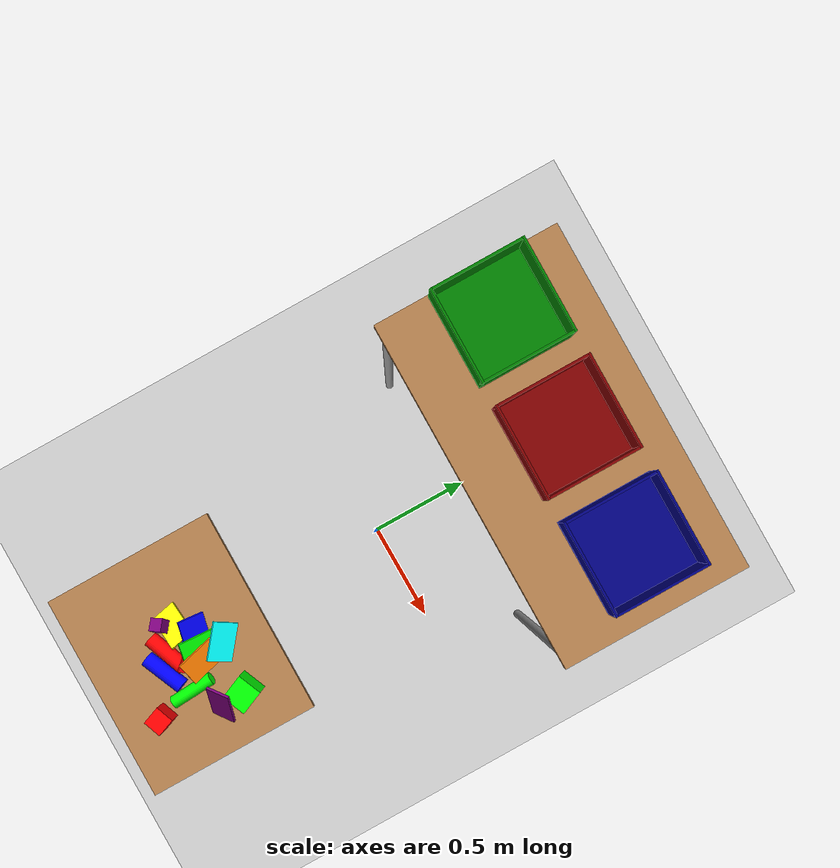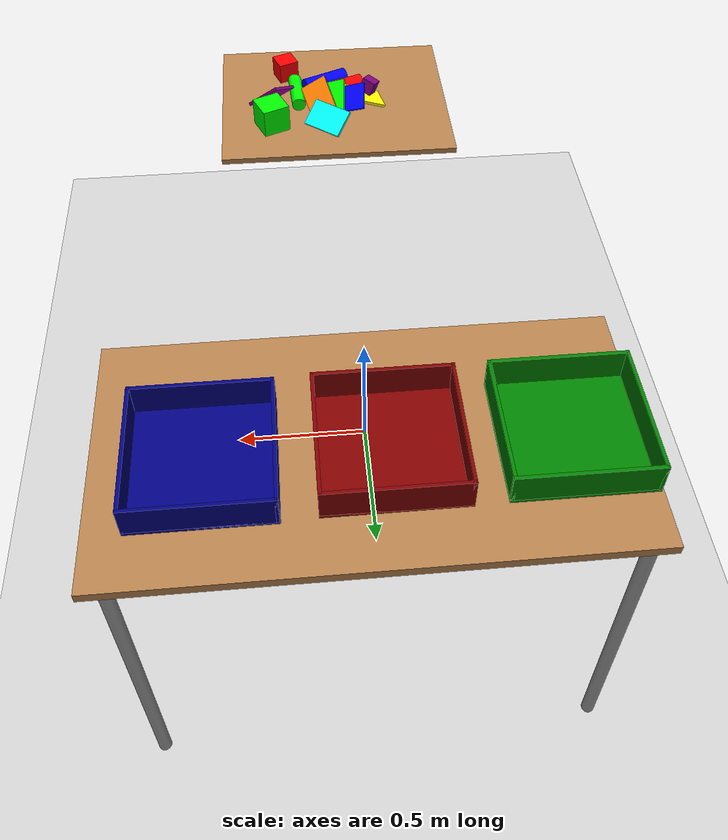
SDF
<sdf version="1.7">
 <world name="default">
  <light name="sun" type="directional">
   <pose>0 0 10 0 -0 0</pose>
   <diffuse>0.8 0.8 0.8 1</diffuse>
   <specular>0.2 0.2 0.2 1</specular>
   <attenuation>
    <range>1000</range>
    <constant>0.9</constant>
    <linear>0.01</linear>
    <quadratic>0.001</quadratic>
   </attenuation>
   <direction>-0.5 0.1 -0.9</direction>
   <spot><inner_angle>0</inner_angle><outer_angle>0</outer_angle><falloff>0</falloff></spot>
  </light>
  <model name="ground_plane">
   <static>1</static>
   <link name="link">
    <collision name="collision">
     <geometry><plane><normal>0 0 1</normal><size>100 100</size></plane></geometry>
     <surface><friction><ode><mu>100</mu><mu2>50</mu2></ode></friction></surface>
    </collision>
    <visual name="visual">
     <cast_shadows>0</cast_shadows>
     <geometry><plane><normal>0 0 1</normal><size>100 100</size></plane></geometry>
     <material>
      <script><uri>file://media/materials/scripts/gazebo.material</uri><name>Gazebo/Grey</name></script>
     </material>
    </visual>
   </link>
  </model>
  <gravity>0 0 -9.8</gravity>
  <magnetic_field>6e-06 2.3e-05 -4.2e-05</magnetic_field>
  <atmosphere type="adiabatic"/>
  <physics type="ode">
   <max_step_size>0.001</max_step_size>
   <real_time_factor>1</real_time_factor>
   <real_time_update_rate>1000</real_time_update_rate>
  </physics>
  <scene><ambient>0.4 0.4 0.4 1</ambient><background>0.7 0.7 0.7 1</background><shadows>1</shadows></scene>
  <audio><device>default</device></audio>
  <spherical_coordinates>
   <surface_model>EARTH_WGS84</surface_model>
   <latitude_deg>0</latitude_deg>
   <longitude_deg>0</longitude_deg>
   <elevation>0</elevation>
   <heading_deg>0</heading_deg>
  </spherical_coordinates>
  <model name="table">
   <static>1</static>
   <link name="link">
    <collision name="surface">
     <pose>0 0 1 0 -0 0</pose>
     <geometry><box><size>1.5 0.8 0.03</size></box></geometry>
     <surface>
      <friction><ode><mu>10</mu><mu2>5</mu2></ode></friction>
      <contact><ode><soft_cfm>0.0001</soft_cfm><soft_erp>0.4</soft_erp><kp>1e+06</kp><kd>10</kd></ode></contact>
     </surface>
    </collision>
    <visual name="visual1">
     <pose>0 0 1 0 -0 0</pose>
     <geometry><box><size>1.5 0.8 0.03</size></box></geometry>
     <material>
      <script><uri>file://media/materials/scripts/gazebo.material</uri><name>Gazebo/Wood</name></script>
     </material>
    </visual>
    <collision name="front_left_leg">
     <pose>0.68 0.38 0.5 0 -0 0</pose>
     <geometry><cylinder><radius>0.02</radius><length>1</length></cylinder></geometry>
    </collision>
    <visual name="front_left_leg">
     <pose>0.68 0.38 0.5 0 -0 0</pose>
     <geometry><cylinder><radius>0.02</radius><length>1</length></cylinder></geometry>
     <material>
      <script><uri>file://media/materials/scripts/gazebo.material</uri><name>Gazebo/Grey</name></script>
     </material>
    </visual>
    <collision name="front_right_leg">
     <pose>0.68 -0.38 0.5 0 -0 0</pose>
     <geometry><cylinder><radius>0.02</radius><length>1</length></cylinder></geometry>
    </collision>
    <visual name="front_right_leg">
     <pose>0.68 -0.38 0.5 0 -0 0</pose>
     <geometry><cylinder><radius>0.02</radius><length>1</length></cylinder></geometry>
     <material>
      <script><uri>file://media/materials/scripts/gazebo.material</uri><name>Gazebo/Grey</name></script>
     </material>
    </visual>
    <collision name="back_right_leg">
     <pose>-0.68 -0.38 0.5 0 -0 0</pose>
     <geometry><cylinder><radius>0.02</radius><length>1</length></cylinder></geometry>
    </collision>
    <visual name="back_right_leg">
     <pose>-0.68 -0.38 0.5 0 -0 0</pose>
     <geometry><cylinder><radius>0.02</radius><length>1</length></cylinder></geometry>
     <material>
      <script><uri>file://media/materials/scripts/gazebo.material</uri><name>Gazebo/Grey</name></script>
     </material>
    </visual>
    <collision name="back_left_leg">
     <pose>-0.68 0.38 0.5 0 -0 0</pose>
     <geometry><cylinder><radius>0.02</radius><length>1</length></cylinder></geometry>
    </collision>
    <visual name="back_left_leg">
     <pose>-0.68 0.38 0.5 0 -0 0</pose>
     <geometry><cylinder><radius>0.02</radius><length>1</length></cylinder></geometry>
     <material>
      <script><uri>file://media/materials/scripts/gazebo.material</uri><name>Gazebo/Grey</name></script>
     </material>
    </visual>
    <inertial>
     <inertia><ixx>1</ixx><ixy>0</ixy><ixz>0</ixz><iyy>1</iyy><iyz>0</iyz><izz>1</izz></inertia>
     <mass>50</mass>
    </inertial>
   </link>
   <pose>0.056083 0.801191 -1.2e-05 0 -0 2.5e-05</pose>
  </model>
  <plugin name="gazebo_link_attacher" filename="libgazebo_link_attacher.so"/>
  <plugin name="gazebo_ros_state" filename="libgazebo_ros_state.so">
   <namespace>/gazebo</namespace>
   <update_rate>100</update_rate>
  </plugin>
  <model name="cube_b">
   <link name="link_2">
    <inertial>
     <mass>2</mass>
     <inertia>
      <ixx>0.00083333</ixx>
      <ixy>0</ixy>
      <ixz>0</ixz>
      <iyy>0.00083333</iyy>
      <iyz>0</iyz>
      <izz>0.00083333</izz>
     </inertia>
    </inertial>
    <visual name="visual">
     <geometry><box><size>0.05 0.05 0.05</size></box></geometry>
     <material>
      <lighting>1</lighting>
      <script><uri>file://media/materials/scripts/gazebo.material</uri><name>Gazebo/Grey</name></script>
      <ambient>0 0 1 1</ambient>
      <diffuse>0 0 1 1</diffuse>
      <specular>0 0 0 1</specular>
      <emissive>0 0 0 1</emissive>
      <shader type="vertex"><normal_map>__default__</normal_map></shader>
     </material>
    </visual>
    <collision name="collision">
     <geometry><box><size>0.05 0.05 0.05</size></box></geometry>
     <surface>
      <friction>
       <ode><mu>0.8</mu><mu2>0.8</mu2><fdir1>0 0 0</fdir1><slip1>0</slip1><slip2>0</slip2></ode>
       <torsional>
        <coefficient>1</coefficient>
        <patch_radius>0</patch_radius>
        <surface_radius>0</surface_radius>
        <use_patch_radius>1</use_patch_radius>
        <ode><slip>0</slip></ode>
       </torsional>
      </friction>
      <bounce><restitution_coefficient>0</restitution_coefficient><threshold>1e+06</threshold></bounce>
      <contact>
       <collide_without_contact>0</collide_without_contact>
       <collide_without_contact_bitmask>1</collide_without_contact_bitmask>
       <collide_bitmask>1</collide_bitmask>
       <ode>
        <soft_cfm>0.0001</soft_cfm>
        <soft_erp>0.4</soft_erp>
        <kp>1e+06</kp>
        <kd>10</kd>
        <max_vel>0.01</max_vel>
        <min_depth>0</min_depth>
       </ode>
      </contact>
     </surface>
    </collision>
   </link>
   <static>0</static>
   <allow_auto_disable>0</allow_auto_disable>
   <pose>0.005816 -0.800378 1.01056 -0.002883 -0.003778 0.22375</pose>
  </model>
  <model name="cube_g">
   <link name="link_2">
    <inertial>
     <mass>2</mass>
     <inertia>
      <ixx>0.00333333</ixx>
      <iyy>0.00333333</iyy>
      <izz>0.00333333</izz>
      <ixy>0</ixy>
      <ixz>0</ixz>
      <iyz>0</iyz>
     </inertia>
    </inertial>
    <visual name="visual">
     <geometry><box><size>0.1 0.1 0.1</size></box></geometry>
     <material>
      <lighting>1</lighting>
      <script><uri>file://media/materials/scripts/gazebo.material</uri><name>Gazebo/Grey</name></script>
      <ambient>0 1 0 1</ambient>
      <diffuse>0 1 0 1</diffuse>
      <specular>0 0 0 1</specular>
      <emissive>0 0 0 1</emissive>
      <shader type="vertex"><normal_map>__default__</normal_map></shader>
     </material>
    </visual>
    <collision name="collision">
     <geometry><box><size>0.1 0.1 0.1</size></box></geometry>
     <surface>
      <friction>
       <ode><mu>0.8</mu><mu2>0.8</mu2><fdir1>0 0 0</fdir1><slip1>0</slip1><slip2>0</slip2></ode>
       <torsional>
        <coefficient>1</coefficient>
        <patch_radius>0</patch_radius>
        <surface_radius>0</surface_radius>
        <use_patch_radius>1</use_patch_radius>
        <ode><slip>0</slip></ode>
       </torsional>
      </friction>
      <bounce><restitution_coefficient>0</restitution_coefficient><threshold>1e+06</threshold></bounce>
      <contact>
       <collide_without_contact>0</collide_without_contact>
       <collide_without_contact_bitmask>1</collide_without_contact_bitmask>
       <collide_bitmask>1</collide_bitmask>
       <ode>
        <soft_cfm>0.0001</soft_cfm>
        <soft_erp>0.4</soft_erp>
        <kp>1e+06</kp>
        <kd>10</kd>
        <max_vel>0.01</max_vel>
        <min_depth>0</min_depth>
       </ode>
      </contact>
     </surface>
    </collision>
   </link>
   <static>0</static>
   <allow_auto_disable>0</allow_auto_disable>
   <pose>0.280411 -0.701677 1.03691 3.141 -0.004288 0.403256</pose>
  </model>
  <model name="cube_r">
   <link name="link_2">
    <inertial>
     <mass>2</mass>
     <inertia>
      <ixx>0.001875</ixx>
      <ixy>0</ixy>
      <ixz>0</ixz>
      <iyy>0.001875</iyy>
      <iyz>0</iyz>
      <izz>0.001875</izz>
     </inertia>
    </inertial>
    <visual name="visual">
     <geometry><box><size>0.075 0.075 0.075</size></box></geometry>
     <material>
      <lighting>1</lighting>
      <script><uri>file://media/materials/scripts/gazebo.material</uri><name>Gazebo/Grey</name></script>
      <ambient>1 0 0 1</ambient>
      <diffuse>1 0 0 1</diffuse>
      <specular>0 0 0 1</specular>
      <emissive>0 0 0 1</emissive>
      <shader type="vertex"><normal_map>__default__</normal_map></shader>
     </material>
    </visual>
    <collision name="collision">
     <geometry><box><size>0.075 0.075 0.075</size></box></geometry>
     <surface>
      <friction>
       <ode><mu>0.8</mu><mu2>0.8</mu2><fdir1>0 0 0</fdir1><slip1>0</slip1><slip2>0</slip2></ode>
       <torsional>
        <coefficient>1</coefficient>
        <patch_radius>0</patch_radius>
        <surface_radius>0</surface_radius>
        <use_patch_radius>1</use_patch_radius>
        <ode><slip>0</slip></ode>
       </torsional>
      </friction>
      <bounce><restitution_coefficient>0</restitution_coefficient><threshold>1e+06</threshold></bounce>
      <contact>
       <collide_without_contact>0</collide_without_contact>
       <collide_without_contact_bitmask>1</collide_without_contact_bitmask>
       <collide_bitmask>1</collide_bitmask>
       <ode>
        <soft_cfm>0.0001</soft_cfm>
        <soft_erp>0.4</soft_erp>
        <kp>1e+06</kp>
        <kd>10</kd>
        <max_vel>0.01</max_vel>
        <min_depth>0</min_depth>
       </ode>
      </contact>
     </surface>
    </collision>
   </link>
   <static>0</static>
   <allow_auto_disable>0</allow_auto_disable>
   <pose>0.218367 -1.0305 1.02378 -1.46897 -1.56649 -2.87707</pose>
  </model>
  <model name="cylinder_r">
   <link name="link_0">
    <inertial>
     <mass>0.2</mass>
     <inertia>
      <ixx>0.0005267</ixx>
      <ixy>0</ixy>
      <ixz>0</ixz>
      <iyy>0.0005267</iyy>
      <iyz>0</iyz>
      <izz>9e-05</izz>
     </inertia>
    </inertial>
    <visual name="visual">
     <geometry><cylinder><radius>0.03</radius><length>0.17</length></cylinder></geometry>
     <material>
      <lighting>1</lighting>
      <script><uri>file://media/materials/scripts/gazebo.material</uri><name>Gazebo/Grey</name></script>
      <ambient>1 0 0 1</ambient>
      <diffuse>1 0 0 1</diffuse>
      <specular>0 0 0 1</specular>
      <emissive>0 0 0 1</emissive>
      <shader type="vertex"><normal_map>__default__</normal_map></shader>
     </material>
    </visual>
    <collision name="collision">
     <geometry><cylinder><radius>0.03</radius><length>0.17</length></cylinder></geometry>
     <surface>
      <friction>
       <ode><mu>0.5</mu><mu2>0.5</mu2><fdir1>0 0 0</fdir1><slip1>0</slip1><slip2>0</slip2></ode>
       <torsional>
        <coefficient>1</coefficient>
        <patch_radius>0</patch_radius>
        <surface_radius>0</surface_radius>
        <use_patch_radius>1</use_patch_radius>
        <ode><slip>0</slip></ode>
       </torsional>
      </friction>
      <bounce><restitution_coefficient>0</restitution_coefficient><threshold>1e+06</threshold></bounce>
      <contact>
       <collide_without_contact>0</collide_without_contact>
       <collide_without_contact_bitmask>1</collide_without_contact_bitmask>
       <collide_bitmask>1</collide_bitmask>
       <ode>
        <soft_cfm>0.0001</soft_cfm>
        <soft_erp>0.4</soft_erp>
        <kp>1e+06</kp>
        <kd>10</kd>
        <max_vel>0.01</max_vel>
        <min_depth>0</min_depth>
       </ode>
      </contact>
     </surface>
    </collision>
   </link>
   <static>0</static>
   <allow_auto_disable>0</allow_auto_disable>
   <pose>0.01283 -0.890317 1.01559 -1.57859 0.991795 1.92896</pose>
  </model>
  <model name="cylinder_b">
   <link name="link_0">
    <inertial>
     <mass>0.2</mass>
     <inertia>
      <ixx>0.0005267</ixx>
      <ixy>0</ixy>
      <ixz>0</ixz>
      <iyy>0.0005267</iyy>
      <iyz>0</iyz>
      <izz>9e-05</izz>
     </inertia>
    </inertial>
    <visual name="visual">
     <geometry><cylinder><radius>0.03</radius><length>0.17</length></cylinder></geometry>
     <material>
      <lighting>1</lighting>
      <ambient>0 0 1 1</ambient>
      <diffuse>0 0 1 1</diffuse>
      <specular>0.1 0.1 0.1 1</specular>
      <emissive>0 0 0 1</emissive>
      <shader type="vertex"><normal_map>__default__</normal_map></shader>
     </material>
    </visual>
    <collision name="collision">
     <geometry><cylinder><radius>0.03</radius><length>0.17</length></cylinder></geometry>
     <surface>
      <friction>
       <ode><mu>0.4</mu><mu2>0.4</mu2><fdir1>0 0 0</fdir1><slip1>0</slip1><slip2>0</slip2></ode>
       <torsional>
        <coefficient>1</coefficient>
        <patch_radius>0</patch_radius>
        <surface_radius>0</surface_radius>
        <use_patch_radius>1</use_patch_radius>
        <ode><slip>0</slip></ode>
       </torsional>
      </friction>
      <bounce><restitution_coefficient>0</restitution_coefficient><threshold>1e+06</threshold></bounce>
      <contact>
       <collide_without_contact>0</collide_without_contact>
       <collide_without_contact_bitmask>1</collide_without_contact_bitmask>
       <collide_bitmask>1</collide_bitmask>
       <ode>
        <soft_cfm>0.0001</soft_cfm>
        <soft_erp>0.4</soft_erp>
        <kp>1e+06</kp>
        <kd>10</kd>
        <max_vel>0.01</max_vel>
        <min_depth>0</min_depth>
       </ode>
      </contact>
     </surface>
    </collision>
   </link>
   <static>0</static>
   <allow_auto_disable>0</allow_auto_disable>
   <pose>0.070182 -0.934871 1.01578 1.53201 1.46071 1.93997</pose>
  </model>
  <model name="cylinder_g">
   <link name="link_0">
    <inertial>
     <mass>0.2</mass>
     <inertia>
      <ixx>0.0005129</ixx>
      <ixy>0</ixy>
      <ixz>0</ixz>
      <iyy>0.0005129</iyy>
      <iyz>0</iyz>
      <izz>6.25e-05</izz>
     </inertia>
    </inertial>
    <visual name="visual">
     <geometry><cylinder><radius>0.025</radius><length>0.17</length></cylinder></geometry>
     <material>
      <lighting>1</lighting>
      <ambient>0 1 0 1</ambient>
      <diffuse>0 1 0 1</diffuse>
      <specular>0.1 0.1 0.1 1</specular>
      <emissive>0 0 0 1</emissive>
      <shader type="vertex"><normal_map>__default__</normal_map></shader>
     </material>
    </visual>
    <collision name="collision">
     <geometry><cylinder><radius>0.025</radius><length>0.17</length></cylinder></geometry>
     <surface>
      <friction>
       <ode><mu>0.5</mu><mu2>0.5</mu2><fdir1>0 0 0</fdir1><slip1>0</slip1><slip2>0</slip2></ode>
       <torsional>
        <coefficient>1</coefficient>
        <patch_radius>0</patch_radius>
        <surface_radius>0</surface_radius>
        <use_patch_radius>1</use_patch_radius>
        <ode><slip>0</slip></ode>
       </torsional>
      </friction>
      <bounce><restitution_coefficient>0</restitution_coefficient><threshold>1e+06</threshold></bounce>
      <contact>
       <collide_without_contact>0</collide_without_contact>
       <collide_without_contact_bitmask>1</collide_without_contact_bitmask>
       <collide_bitmask>1</collide_bitmask>
       <ode>
        <soft_cfm>0.0001</soft_cfm>
        <soft_erp>0.4</soft_erp>
        <kp>1e+06</kp>
        <kd>10</kd>
        <max_vel>0.01</max_vel>
        <min_depth>0</min_depth>
       </ode>
      </contact>
     </surface>
    </collision>
   </link>
   <static>0</static>
   <allow_auto_disable>0</allow_auto_disable>
   <pose>0.181981 -0.877197 1.01131 -1.56991 -0.138812 0.059658</pose>
  </model>
  <model name="cuboid_r">
   <link name="link">
    <inertial>
     <mass>2</mass>
     <inertia>
      <ixx>0.001683</ixx>
      <iyy>0.003767</iyy>
      <izz>0.005417</izz>
      <ixy>0</ixy>
      <ixz>0</ixz>
      <iyz>0</iyz>
     </inertia>
    </inertial>
    <visual name="visual">
     <geometry><box><size>0.15 0.1 0.01</size></box></geometry>
     <material><ambient>1 0 0 1</ambient><diffuse>1 0 0 1</diffuse><specular>0.1 0.1 0.1 1</specular></material>
    </visual>
    <collision name="collision">
     <geometry><box><size>0.15 0.1 0.01</size></box></geometry>
     <surface>
      <friction>
       <ode><mu>0.6</mu><mu2>0.6</mu2><fdir1>0 0 0</fdir1><slip1>0</slip1><slip2>0</slip2></ode>
       <torsional>
        <coefficient>1</coefficient>
        <patch_radius>0</patch_radius>
        <surface_radius>0</surface_radius>
        <use_patch_radius>1</use_patch_radius>
        <ode><slip>0</slip></ode>
       </torsional>
      </friction>
      <bounce><restitution_coefficient>0</restitution_coefficient><threshold>1e+06</threshold></bounce>
      <contact>
       <collide_without_contact>0</collide_without_contact>
       <collide_without_contact_bitmask>1</collide_without_contact_bitmask>
       <collide_bitmask>1</collide_bitmask>
       <ode>
        <soft_cfm>0.0001</soft_cfm>
        <soft_erp>0.4</soft_erp>
        <kp>1e+06</kp>
        <kd>10</kd>
        <max_vel>0.01</max_vel>
        <min_depth>0</min_depth>
       </ode>
      </contact>
     </surface>
    </collision>
   </link>
   <static>0</static>
   <allow_auto_disable>0</allow_auto_disable>
   <pose>0.070081 -0.793227 1.02904 -0.65064 -0.0441 -0.832726</pose>
  </model>
  <model name="cuboid_g">
   <link name="link">
    <inertial>
     <mass>2</mass>
     <inertia>
      <ixx>0.001683</ixx>
      <iyy>0.003767</iyy>
      <izz>0.005417</izz>
      <ixy>0</ixy>
      <ixz>0</ixz>
      <iyz>0</iyz>
     </inertia>
    </inertial>
    <visual name="visual">
     <geometry><box><size>0.15 0.1 0.01</size></box></geometry>
     <material><ambient>0 1 0 1</ambient><diffuse>0 1 0 1</diffuse><specular>0.1 0.1 0.1 1</specular></material>
    </visual>
    <collision name="collision">
     <geometry><box><size>0.15 0.1 0.01</size></box></geometry>
     <surface>
      <friction>
       <ode><mu>0.6</mu><mu2>0.6</mu2><fdir1>0 0 0</fdir1><slip1>0</slip1><slip2>0</slip2></ode>
       <torsional>
        <coefficient>1</coefficient>
        <patch_radius>0</patch_radius>
        <surface_radius>0</surface_radius>
        <use_patch_radius>1</use_patch_radius>
        <ode><slip>0</slip></ode>
       </torsional>
      </friction>
      <bounce><restitution_coefficient>0</restitution_coefficient><threshold>1e+06</threshold></bounce>
      <contact>
       <collide_without_contact>0</collide_without_contact>
       <collide_without_contact_bitmask>1</collide_without_contact_bitmask>
       <collide_bitmask>1</collide_bitmask>
       <ode>
        <soft_cfm>0.0001</soft_cfm>
        <soft_erp>0.4</soft_erp>
        <kp>1e+06</kp>
        <kd>10</kd>
        <max_vel>0.01</max_vel>
        <min_depth>0</min_depth>
       </ode>
      </contact>
     </surface>
    </collision>
   </link>
   <static>0</static>
   <allow_auto_disable>0</allow_auto_disable>
   <pose>0.053615 -0.759919 1.04459 -0.395031 -0.530456 -1.6538</pose>
  </model>
  <model name="cuboid_b">
   <link name="link">
    <inertial>
     <mass>2</mass>
     <inertia>
      <ixx>0.001683</ixx>
      <iyy>0.003767</iyy>
      <izz>0.005417</izz>
      <ixy>0</ixy>
      <ixz>0</ixz>
      <iyz>0</iyz>
     </inertia>
    </inertial>
    <visual name="visual">
     <geometry><box><size>0.15 0.1 0.01</size></box></geometry>
     <material><ambient>0 0 1 1</ambient><diffuse>0 0 1 1</diffuse><specular>0.1 0.1 0.1 1</specular></material>
    </visual>
    <collision name="collision">
     <geometry><box><size>0.15 0.1 0.01</size></box></geometry>
     <surface>
      <friction>
       <ode><mu>0.6</mu><mu2>0.6</mu2><fdir1>0 0 0</fdir1><slip1>0</slip1><slip2>0</slip2></ode>
       <torsional>
        <coefficient>1</coefficient>
        <patch_radius>0</patch_radius>
        <surface_radius>0</surface_radius>
        <use_patch_radius>1</use_patch_radius>
        <ode><slip>0</slip></ode>
       </torsional>
      </friction>
      <bounce><restitution_coefficient>0</restitution_coefficient><threshold>1e+06</threshold></bounce>
      <contact>
       <collide_without_contact>0</collide_without_contact>
       <collide_without_contact_bitmask>1</collide_without_contact_bitmask>
       <collide_bitmask>1</collide_bitmask>
       <ode>
        <soft_cfm>0.0001</soft_cfm>
        <soft_erp>0.4</soft_erp>
        <kp>1e+06</kp>
        <kd>10</kd>
        <max_vel>0.01</max_vel>
        <min_depth>0</min_depth>
       </ode>
      </contact>
     </surface>
    </collision>
   </link>
   <static>0</static>
   <allow_auto_disable>0</allow_auto_disable>
   <pose>0.003038 -0.751609 1.05441 -0.571712 0.328393 -0.306301</pose>
  </model>
  <model name="cuboid_purple">
   <link name="link">
    <inertial>
     <mass>2</mass>
     <inertia>
      <ixx>0.001683</ixx>
      <iyy>0.003767</iyy>
      <izz>0.005417</izz>
      <ixy>0</ixy>
      <ixz>0</ixz>
      <iyz>0</iyz>
     </inertia>
    </inertial>
    <visual name="visual">
     <geometry><box><size>0.15 0.1 0.01</size></box></geometry>
     <material>
      <ambient>0.5 0 0.5 1</ambient>
      <diffuse>0.5 0 0.5 1</diffuse>
      <specular>0.1 0.1 0.1 1</specular>
     </material>
    </visual>
    <collision name="collision">
     <geometry><box><size>0.15 0.1 0.01</size></box></geometry>
     <surface>
      <friction>
       <ode><mu>0.6</mu><mu2>0.6</mu2><fdir1>0 0 0</fdir1><slip1>0</slip1><slip2>0</slip2></ode>
       <torsional>
        <coefficient>1</coefficient>
        <patch_radius>0</patch_radius>
        <surface_radius>0</surface_radius>
        <use_patch_radius>1</use_patch_radius>
        <ode><slip>0</slip></ode>
       </torsional>
      </friction>
      <bounce><restitution_coefficient>0</restitution_coefficient><threshold>1e+06</threshold></bounce>
      <contact>
       <collide_without_contact>0</collide_without_contact>
       <collide_without_contact_bitmask>1</collide_without_contact_bitmask>
       <collide_bitmask>1</collide_bitmask>
       <ode>
        <soft_cfm>0.0001</soft_cfm>
        <soft_erp>0.4</soft_erp>
        <kp>1e+06</kp>
        <kd>10</kd>
        <max_vel>0.01</max_vel>
        <min_depth>0</min_depth>
       </ode>
      </contact>
     </surface>
    </collision>
   </link>
   <static>0</static>
   <allow_auto_disable>0</allow_auto_disable>
   <pose>0.277521 -0.795941 1.05594 -2.65458 0.688781 -0.477079</pose>
  </model>
  <model name="cuboid_orange">
   <link name="link">
    <inertial>
     <mass>2</mass>
     <inertia>
      <ixx>0.001683</ixx>
      <iyy>0.003767</iyy>
      <izz>0.005417</izz>
      <ixy>0</ixy>
      <ixz>0</ixz>
      <iyz>0</iyz>
     </inertia>
    </inertial>
    <visual name="visual">
     <geometry><box><size>0.15 0.1 0.01</size></box></geometry>
     <material>
      <ambient>1 0.5 0 1</ambient>
      <diffuse>1 0.5 0 1</diffuse>
      <specular>0.1 0.1 0.1 1</specular>
     </material>
    </visual>
    <collision name="collision">
     <geometry><box><size>0.15 0.1 0.01</size></box></geometry>
     <surface>
      <friction>
       <ode><mu>0.6</mu><mu2>0.6</mu2><fdir1>0 0 0</fdir1><slip1>0</slip1><slip2>0</slip2></ode>
       <torsional>
        <coefficient>1</coefficient>
        <patch_radius>0</patch_radius>
        <surface_radius>0</surface_radius>
        <use_patch_radius>1</use_patch_radius>
        <ode><slip>0</slip></ode>
       </torsional>
      </friction>
      <bounce><restitution_coefficient>0</restitution_coefficient><threshold>1e+06</threshold></bounce>
      <contact>
       <collide_without_contact>0</collide_without_contact>
       <collide_without_contact_bitmask>1</collide_without_contact_bitmask>
       <collide_bitmask>1</collide_bitmask>
       <ode>
        <soft_cfm>0.0001</soft_cfm>
        <soft_erp>0.4</soft_erp>
        <kp>1e+06</kp>
        <kd>10</kd>
        <max_vel>0.01</max_vel>
        <min_depth>0</min_depth>
       </ode>
      </contact>
     </surface>
    </collision>
   </link>
   <static>0</static>
   <allow_auto_disable>0</allow_auto_disable>
   <pose>0.100115 -0.778823 1.04272 -0.548084 -0.36892 -1.30547</pose>
  </model>
  <model name="cuboid_yellow">
   <link name="link">
    <inertial>
     <mass>2</mass>
     <inertia>
      <ixx>0.001683</ixx>
      <iyy>0.003767</iyy>
      <izz>0.005417</izz>
      <ixy>0</ixy>
      <ixz>0</ixz>
      <iyz>0</iyz>
     </inertia>
    </inertial>
    <visual name="visual">
     <geometry><box><size>0.15 0.1 0.01</size></box></geometry>
     <material><ambient>1 1 0 1</ambient><diffuse>1 1 0 1</diffuse><specular>0.1 0.1 0.1 1</specular></material>
    </visual>
    <collision name="collision">
     <geometry><box><size>0.15 0.1 0.01</size></box></geometry>
     <surface>
      <friction>
       <ode><mu>0.6</mu><mu2>0.6</mu2><fdir1>0 0 0</fdir1><slip1>0</slip1><slip2>0</slip2></ode>
       <torsional>
        <coefficient>1</coefficient>
        <patch_radius>0</patch_radius>
        <surface_radius>0</surface_radius>
        <use_patch_radius>1</use_patch_radius>
        <ode><slip>0</slip></ode>
       </torsional>
      </friction>
      <bounce><restitution_coefficient>0</restitution_coefficient><threshold>1e+06</threshold></bounce>
      <contact>
       <collide_without_contact>0</collide_without_contact>
       <collide_without_contact_bitmask>1</collide_without_contact_bitmask>
       <collide_bitmask>1</collide_bitmask>
       <ode>
        <soft_cfm>0.0001</soft_cfm>
        <soft_erp>0.4</soft_erp>
        <kp>1e+06</kp>
        <kd>10</kd>
        <max_vel>0.01</max_vel>
        <min_depth>0</min_depth>
       </ode>
      </contact>
     </surface>
    </collision>
   </link>
   <static>0</static>
   <allow_auto_disable>0</allow_auto_disable>
   <pose>-0.069932 -0.821076 1.01854 0.001142 -0.395888 0.207011</pose>
  </model>
  <model name="cuboid_cyan">
   <link name="link">
    <inertial>
     <mass>2</mass>
     <inertia>
      <ixx>0.001683</ixx>
      <iyy>0.003767</iyy>
      <izz>0.005417</izz>
      <ixy>0</ixy>
      <ixz>0</ixz>
      <iyz>0</iyz>
     </inertia>
    </inertial>
    <visual name="visual">
     <geometry><box><size>0.15 0.1 0.01</size></box></geometry>
     <material><ambient>0 1 1 1</ambient><diffuse>0 1 1 1</diffuse><specular>0.1 0.1 0.1 1</specular></material>
    </visual>
    <collision name="collision">
     <geometry><box><size>0.15 0.1 0.01</size></box></geometry>
     <surface>
      <friction>
       <ode><mu>0.6</mu><mu2>0.6</mu2><fdir1>0 0 0</fdir1><slip1>0</slip1><slip2>0</slip2></ode>
       <torsional>
        <coefficient>1</coefficient>
        <patch_radius>0</patch_radius>
        <surface_radius>0</surface_radius>
        <use_patch_radius>1</use_patch_radius>
        <ode><slip>0</slip></ode>
       </torsional>
      </friction>
      <bounce><restitution_coefficient>0</restitution_coefficient><threshold>1e+06</threshold></bounce>
      <contact>
       <collide_without_contact>0</collide_without_contact>
       <collide_without_contact_bitmask>1</collide_without_contact_bitmask>
       <collide_bitmask>1</collide_bitmask>
       <ode>
        <soft_cfm>0.0001</soft_cfm>
        <soft_erp>0.4</soft_erp>
        <kp>1e+06</kp>
        <kd>10</kd>
        <max_vel>0.01</max_vel>
        <min_depth>0</min_depth>
       </ode>
      </contact>
     </surface>
    </collision>
   </link>
   <static>0</static>
   <allow_auto_disable>0</allow_auto_disable>
   <pose>0.075635 -0.686444 1.01974 -0.631256 -0.002537 -0.674118</pose>
  </model>
  <model name="workspace">
   <link name="link">
    <inertial>
     <mass>100</mass>
     <inertia><ixx>6.02417</ixx><ixy>0</ixy><ixz>0</ixz><iyy>4.08667</iyy><iyz>0</iyz><izz>10.1042</izz></inertia>
    </inertial>
    <visual name="visual">
     <geometry><box><size>0.7 0.85 0.02</size></box></geometry>
     <material>
      <script><name>Gazebo/Wood</name><uri>file://media/materials/scripts/gazebo.material</uri></script>
      <shader type="pixel"/>
     </material>
    </visual>
    <collision name="collision">
     <geometry><box><size>0.7 0.85 0.02</size></box></geometry>
     <surface>
      <friction>
       <ode><mu>100</mu><mu2>50</mu2><fdir1>0 0 0</fdir1><slip1>0</slip1><slip2>0</slip2></ode>
       <torsional>
        <coefficient>1</coefficient>
        <patch_radius>0</patch_radius>
        <surface_radius>0</surface_radius>
        <use_patch_radius>1</use_patch_radius>
        <ode><slip>0</slip></ode>
       </torsional>
      </friction>
      <bounce><restitution_coefficient>0</restitution_coefficient><threshold>1e+06</threshold></bounce>
      <contact>
       <collide_without_contact>0</collide_without_contact>
       <collide_without_contact_bitmask>1</collide_without_contact_bitmask>
       <collide_bitmask>1</collide_bitmask>
       <ode>
        <soft_cfm>0.0001</soft_cfm>
        <soft_erp>0.2</soft_erp>
        <kp>1e+13</kp>
        <kd>10</kd>
        <max_vel>0.01</max_vel>
        <min_depth>0</min_depth>
       </ode>
       <bullet>
        <split_impulse>1</split_impulse>
        <split_impulse_penetration_threshold>-0.01</split_impulse_penetration_threshold>
        <soft_cfm>0</soft_cfm>
        <soft_erp>0.2</soft_erp>
        <kp>1e+13</kp>
        <kd>1</kd>
       </bullet>
      </contact>
     </surface>
    </collision>
   </link>
   <static>1</static>
   <pose>0.0416 -0.859914 0.975746 -0.004154 -0.001127 1.57039</pose>
  </model>
  <model name="tray_red">
   <static>1</static>
   <link name="link">
    <collision name="base_collision">
     <pose>0 0 0.01 0 -0 0</pose>
     <geometry><box><size>0.4 0.4 0.01</size></box></geometry>
     <surface><contact><ode><mu>50</mu><mu2>50</mu2></ode></contact></surface>
    </collision>
    <visual name="base_visual">
     <pose>0 0 0.01 0 -0 0</pose>
     <geometry><box><size>0.4 0.4 0.01</size></box></geometry>
     <material>
      <ambient>1 0 0 1</ambient>
      <diffuse>0.5 0 0 1</diffuse>
      <specular>0 0 0 1</specular>
      <emissive>0 0 0 1</emissive>
      <shininess>100</shininess>
     </material>
    </visual>
    <collision name="front_collision">
     <pose>0 0.195 0.06 0 -0 0</pose>
     <geometry><box><size>0.4 0.01 0.1</size></box></geometry>
    </collision>
    <visual name="front_visual">
     <pose>0 0.195 0.06 0 -0 0</pose>
     <geometry><box><size>0.4 0.01 0.1</size></box></geometry>
     <material>
      <ambient>1 0 0 1</ambient>
      <diffuse>0.5 0 0 1</diffuse>
      <specular>0 0 0 1</specular>
      <emissive>0 0 0 1</emissive>
     </material>
    </visual>
    <collision name="back_collision">
     <pose>0 -0.195 0.06 0 -0 0</pose>
     <geometry><box><size>0.4 0.01 0.1</size></box></geometry>
    </collision>
    <visual name="back_visual">
     <pose>0 -0.195 0.06 0 -0 0</pose>
     <geometry><box><size>0.4 0.01 0.1</size></box></geometry>
     <material>
      <ambient>1 0 0 1</ambient>
      <diffuse>0.5 0 0 1</diffuse>
      <specular>0 0 0 1</specular>
      <emissive>0 0 0 1</emissive>
     </material>
    </visual>
    <collision name="left_collision">
     <pose>0.195 0 0.06 0 -0 0</pose>
     <geometry><box><size>0.01 0.4 0.1</size></box></geometry>
    </collision>
    <visual name="left_visual">
     <pose>0.195 0 0.06 0 -0 0</pose>
     <geometry><box><size>0.01 0.4 0.1</size></box></geometry>
     <material>
      <ambient>1 0 0 1</ambient>
      <diffuse>0.5 0 0 1</diffuse>
      <specular>0 0 0 1</specular>
      <emissive>0 0 0 1</emissive>
     </material>
    </visual>
    <collision name="right_collision">
     <pose>-0.195 0 0.06 0 -0 0</pose>
     <geometry><box><size>0.01 0.4 0.1</size></box></geometry>
    </collision>
    <visual name="right_visual">
     <pose>-0.195 0 0.06 0 -0 0</pose>
     <geometry><box><size>0.01 0.4 0.1</size></box></geometry>
     <material>
      <ambient>1 0 0 1</ambient>
      <diffuse>0.5 0 0 1</diffuse>
      <specular>0 0 0 1</specular>
      <emissive>0 0 0 1</emissive>
     </material>
    </visual>
    <inertial>
     <inertia><ixx>1</ixx><ixy>0</ixy><ixz>0</ixz><iyy>1</iyy><iyz>0</iyz><izz>1</izz></inertia>
     <mass>1</mass>
    </inertial>
   </link>
   <pose>0.003367 0.836815 1.00999 0 -0 0</pose>
  </model>
  <model name="tray_green">
   <static>1</static>
   <link name="link">
    <collision name="base_collision">
     <pose>0 0 0.01 0 -0 0</pose>
     <geometry><box><size>0.4 0.4 0.01</size></box></geometry>
     <surface><contact><ode><mu>50</mu><mu2>50</mu2></ode></contact></surface>
    </collision>
    <visual name="base_visual">
     <pose>0 0 0.01 0 -0 0</pose>
     <geometry><box><size>0.4 0.4 0.01</size></box></geometry>
     <material><ambient>0 1 0 1</ambient><diffuse>0 0.5 0 1</diffuse></material>
    </visual>
    <collision name="front_collision">
     <pose>0 0.195 0.06 0 -0 0</pose>
     <geometry><box><size>0.4 0.01 0.1</size></box></geometry>
    </collision>
    <visual name="front_visual">
     <pose>0 0.195 0.06 0 -0 0</pose>
     <geometry><box><size>0.4 0.01 0.1</size></box></geometry>
     <material><ambient>0 1 0 1</ambient><diffuse>0 0.5 0 1</diffuse></material>
    </visual>
    <collision name="back_collision">
     <pose>0 -0.195 0.06 0 -0 0</pose>
     <geometry><box><size>0.4 0.01 0.1</size></box></geometry>
    </collision>
    <visual name="back_visual">
     <pose>0 -0.195 0.06 0 -0 0</pose>
     <geometry><box><size>0.4 0.01 0.1</size></box></geometry>
     <material><ambient>0 1 0 1</ambient><diffuse>0 0.5 0 1</diffuse></material>
    </visual>
    <collision name="left_collision">
     <pose>0.195 0 0.06 0 -0 0</pose>
     <geometry><box><size>0.01 0.4 0.1</size></box></geometry>
    </collision>
    <visual name="left_visual">
     <pose>0.195 0 0.06 0 -0 0</pose>
     <geometry><box><size>0.01 0.4 0.1</size></box></geometry>
     <material><ambient>0 1 0 1</ambient><diffuse>0 0.5 0 1</diffuse></material>
    </visual>
    <collision name="right_collision">
     <pose>-0.195 0 0.06 0 -0 0</pose>
     <geometry><box><size>0.01 0.4 0.1</size></box></geometry>
    </collision>
    <visual name="right_visual">
     <pose>-0.195 0 0.06 0 -0 0</pose>
     <geometry><box><size>0.01 0.4 0.1</size></box></geometry>
     <material><ambient>0 1 0 1</ambient><diffuse>0 0.5 0 1</diffuse></material>
    </visual>
    <inertial>
     <inertia><ixx>1</ixx><ixy>0</ixy><ixz>0</ixz><iyy>1</iyy><iyz>0</iyz><izz>1</izz></inertia>
     <mass>1</mass>
    </inertial>
   </link>
   <pose>-0.487214 0.834657 1.00999 0 -0 0</pose>
  </model>
  <model name="tray_blue">
   <static>1</static>
   <link name="link">
    <collision name="base_collision">
     <pose>0 0 0.01 0 -0 0</pose>
     <geometry><box><size>0.4 0.4 0.01</size></box></geometry>
     <surface><contact><ode><mu>50</mu><mu2>50</mu2></ode></contact></surface>
    </collision>
    <visual name="base_visual">
     <pose>0 0 0.01 0 -0 0</pose>
     <geometry><box><size>0.4 0.4 0.01</size></box></geometry>
     <material><ambient>0 0 1 1</ambient><diffuse>0 0 0.5 1</diffuse></material>
    </visual>
    <collision name="front_collision">
     <pose>0 0.195 0.06 0 -0 0</pose>
     <geometry><box><size>0.4 0.01 0.1</size></box></geometry>
    </collision>
    <visual name="front_visual">
     <pose>0 0.195 0.06 0 -0 0</pose>
     <geometry><box><size>0.4 0.01 0.1</size></box></geometry>
     <material><ambient>0 0 1 1</ambient><diffuse>0 0 0.5 1</diffuse></material>
    </visual>
    <collision name="back_collision">
     <pose>0 -0.195 0.06 0 -0 0</pose>
     <geometry><box><size>0.4 0.01 0.1</size></box></geometry>
    </collision>
    <visual name="back_visual">
     <pose>0 -0.195 0.06 0 -0 0</pose>
     <geometry><box><size>0.4 0.01 0.1</size></box></geometry>
     <material><ambient>0 0 1 1</ambient><diffuse>0 0 0.5 1</diffuse></material>
    </visual>
    <collision name="left_collision">
     <pose>0.195 0 0.06 0 -0 0</pose>
     <geometry><box><size>0.01 0.4 0.1</size></box></geometry>
    </collision>
    <visual name="left_visual">
     <pose>0.195 0 0.06 0 -0 0</pose>
     <geometry><box><size>0.01 0.4 0.1</size></box></geometry>
     <material><ambient>0 0 1 1</ambient><diffuse>0 0 0.5 1</diffuse></material>
    </visual>
    <collision name="right_collision">
     <pose>-0.195 0 0.06 0 -0 0</pose>
     <geometry><box><size>0.01 0.4 0.1</size></box></geometry>
    </collision>
    <visual name="right_visual">
     <pose>-0.195 0 0.06 0 -0 0</pose>
     <geometry><box><size>0.01 0.4 0.1</size></box></geometry>
     <material><ambient>0 0 1 1</ambient><diffuse>0 0 0.5 1</diffuse></material>
    </visual>
    <inertial>
     <inertia><ixx>1</ixx><ixy>0</ixy><ixz>0</ixz><iyy>1</iyy><iyz>0</iyz><izz>1</izz></inertia>
     <mass>1</mass>
    </inertial>
   </link>
   <pose>0.500589 0.844197 1.00999 0 -0 0</pose>
  </model>
  <model name="cube_purple">
   <link name="link_2">
    <inertial>
     <mass>2</mass>
     <inertia>
      <ixx>0.00083333</ixx>
      <ixy>0</ixy>
      <ixz>0</ixz>
      <iyy>0.00083333</iyy>
      <iyz>0</iyz>
      <izz>0.00083333</izz>
     </inertia>
    </inertial>
    <visual name="visual">
     <geometry><box><size>0.05 0.05 0.05</size></box></geometry>
     <material>
      <lighting>1</lighting>
      <script><uri>file://media/materials/scripts/gazebo.material</uri><name>Gazebo/Grey</name></script>
      <ambient>0.5 0 0.5 1</ambient>
      <diffuse>0.5 0 0.5 1</diffuse>
      <specular>0.1 0.1 0.1 1</specular>
      <emissive>0 0 0 1</emissive>
      <shader type="vertex"><normal_map>__default__</normal_map></shader>
     </material>
    </visual>
    <collision name="collision">
     <geometry><box><size>0.05 0.05 0.05</size></box></geometry>
     <surface>
      <friction>
       <ode><mu>0.8</mu><mu2>0.8</mu2><fdir1>0 0 0</fdir1><slip1>0</slip1><slip2>0</slip2></ode>
       <torsional>
        <coefficient>1</coefficient>
        <patch_radius>0</patch_radius>
        <surface_radius>0</surface_radius>
        <use_patch_radius>1</use_patch_radius>
        <ode><slip>0</slip></ode>
       </torsional>
      </friction>
      <bounce><restitution_coefficient>0</restitution_coefficient><threshold>1e+06</threshold></bounce>
      <contact>
       <collide_without_contact>0</collide_without_contact>
       <collide_without_contact_bitmask>1</collide_without_contact_bitmask>
       <collide_bitmask>1</collide_bitmask>
       <ode>
        <soft_cfm>0.0001</soft_cfm>
        <soft_erp>0.4</soft_erp>
        <kp>1e+06</kp>
        <kd>10</kd>
        <max_vel>0.01</max_vel>
        <min_depth>0</min_depth>
       </ode>
      </contact>
     </surface>
    </collision>
   </link>
   <static>0</static>
   <allow_auto_disable>0</allow_auto_disable>
   <pose>-0.094602 -0.860245 1.03754 -0.28321 0.280579 2.54048</pose>
  </model>
 </world>
</sdf>
